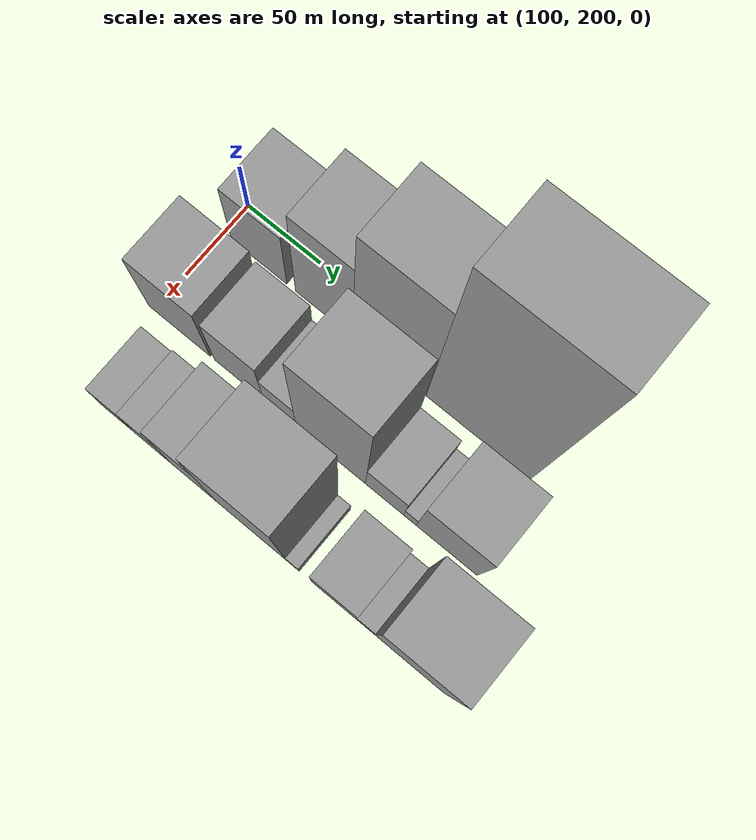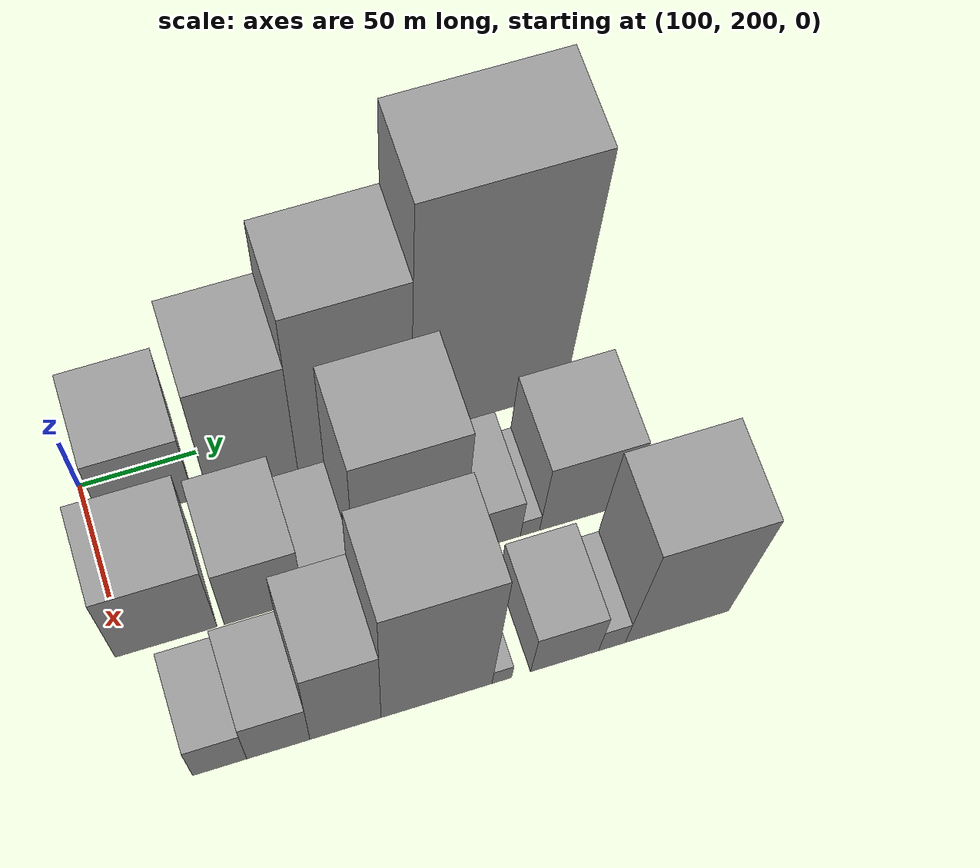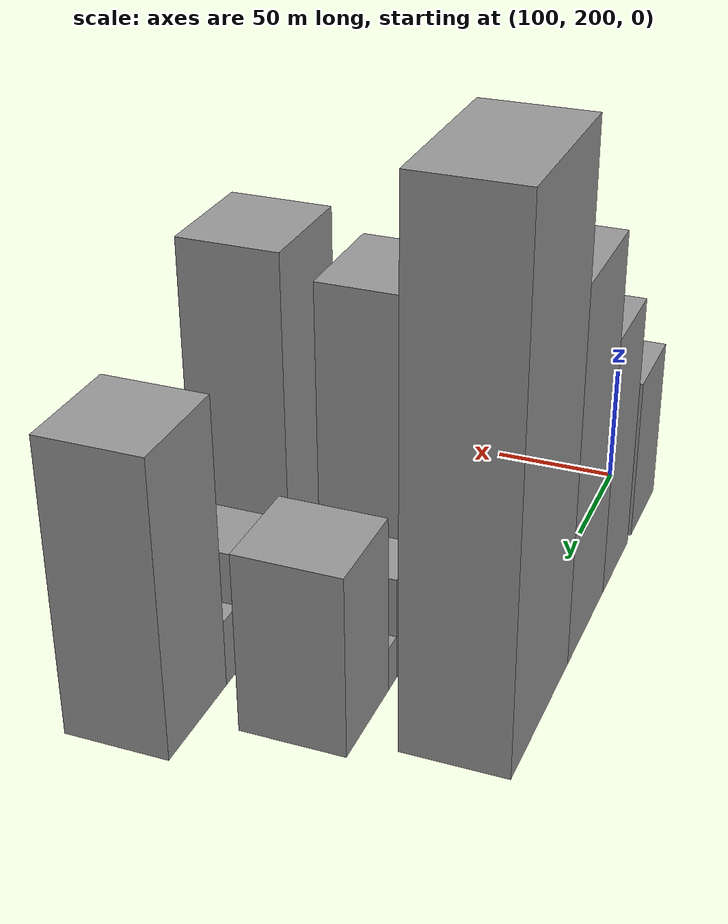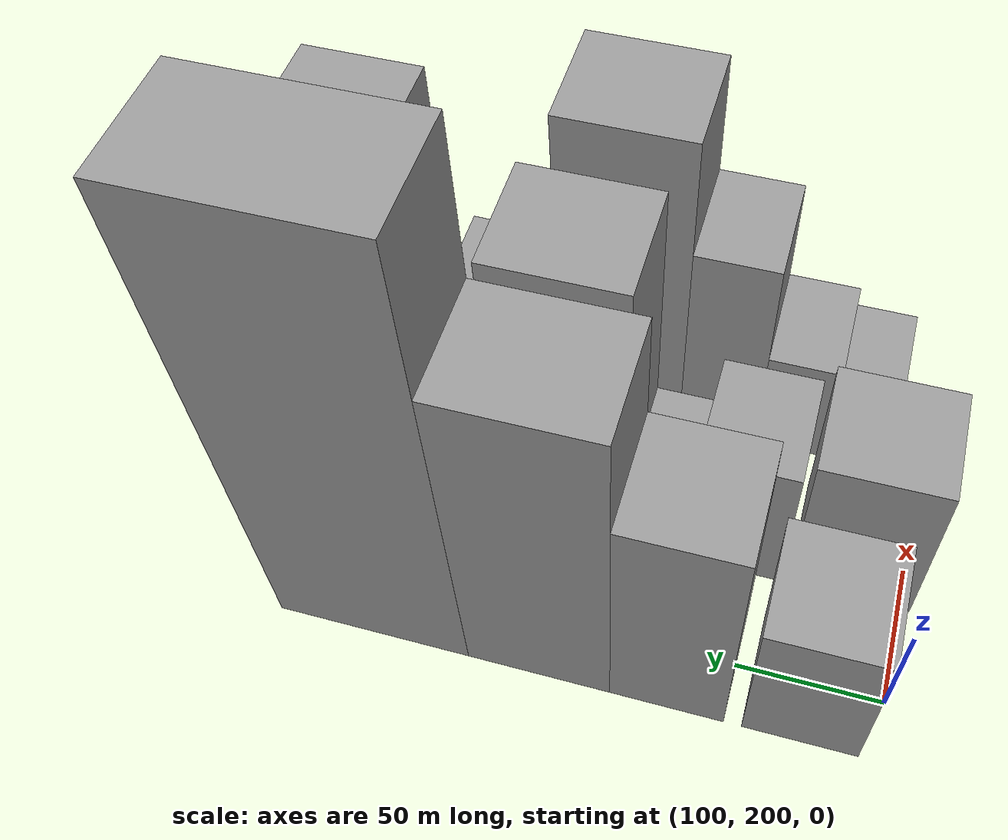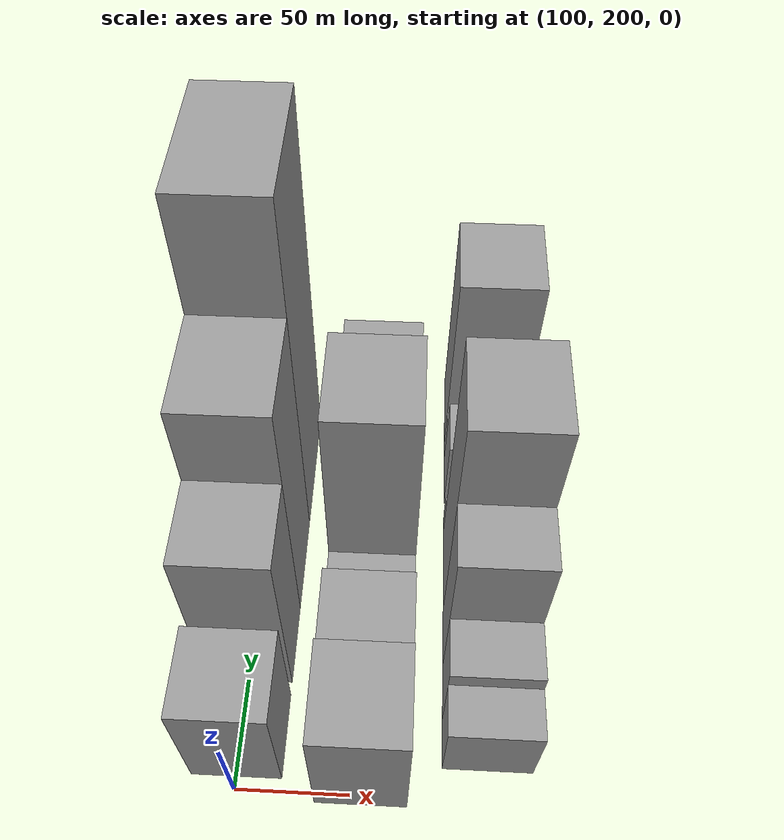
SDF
<sdf version="1.6">
 <world name="default">
  <model name="building_34">
   <static>1</static>
   <pose>100.0000 224.7273 0 0.000000 0.000000 0.000000</pose>
   <link name="link">
    <pose>0 0 34.50 0 0 0</pose>
    <collision name="collision"><geometry><box><size>40.0000 38.2369 69.0000</size></box></geometry></collision>
    <visual name="visual">
     <cast_shadows>0</cast_shadows>
     <geometry><box><size>40.0000 38.2369 69.0000</size></box></geometry>
     <material>
      <script>
       <uri>model://grey_wall/materials/scripts</uri>
       <uri>model://grey_wall/materials/textures</uri>
       <name>vrc/grey_wall</name>
      </script>
     </material>
    </visual>
   </link>
  </model>
  <model name="building_35">
   <static>1</static>
   <pose>100.0000 269.0364 0 0.000000 0.000000 0.000000</pose>
   <link name="link">
    <pose>0 0 54.00 0 0 0</pose>
    <collision name="collision"><geometry><box><size>40.0000 38.3813 108.0000</size></box></geometry></collision>
    <visual name="visual">
     <cast_shadows>0</cast_shadows>
     <geometry><box><size>40.0000 38.3813 108.0000</size></box></geometry>
     <material>
      <script>
       <uri>model://grey_wall/materials/scripts</uri>
       <uri>model://grey_wall/materials/textures</uri>
       <name>vrc/grey_wall</name>
      </script>
     </material>
    </visual>
   </link>
  </model>
  <model name="building_36">
   <static>1</static>
   <pose>100.0000 312.8432 0 0.000000 0.000000 0.000000</pose>
   <link name="link">
    <pose>0 0 75.00 0 0 0</pose>
    <collision name="collision"><geometry><box><size>40.0000 49.2324 150.0000</size></box></geometry></collision>
    <visual name="visual">
     <cast_shadows>0</cast_shadows>
     <geometry><box><size>40.0000 49.2324 150.0000</size></box></geometry>
     <material>
      <script>
       <uri>model://grey_wall/materials/scripts</uri>
       <uri>model://grey_wall/materials/textures</uri>
       <name>vrc/grey_wall</name>
      </script>
     </material>
    </visual>
   </link>
  </model>
  <model name="building_37">
   <static>1</static>
   <pose>100.0000 371.3804 0 0.000000 0.000000 0.000000</pose>
   <link name="link">
    <pose>0 0 103.50 0 0 0</pose>
    <collision name="collision"><geometry><box><size>40.0000 67.8420 207.0000</size></box></geometry></collision>
    <visual name="visual">
     <cast_shadows>0</cast_shadows>
     <geometry><box><size>40.0000 67.8420 207.0000</size></box></geometry>
     <material>
      <script>
       <uri>model://grey_wall/materials/scripts</uri>
       <uri>model://grey_wall/materials/textures</uri>
       <name>vrc/grey_wall</name>
      </script>
     </material>
    </visual>
   </link>
  </model>
  <model name="building_83">
   <static>1</static>
   <pose>155.0000 217.3656 0 0.000000 0.000000 0.000000</pose>
   <link name="link">
    <pose>0 0 37.50 0 0 0</pose>
    <collision name="collision"><geometry><box><size>40.0000 42.2635 75.0000</size></box></geometry></collision>
    <visual name="visual">
     <cast_shadows>0</cast_shadows>
     <geometry><box><size>40.0000 42.2635 75.0000</size></box></geometry>
     <material>
      <script>
       <uri>model://grey_wall/materials/scripts</uri>
       <uri>model://grey_wall/materials/textures</uri>
       <name>vrc/grey_wall</name>
      </script>
     </material>
    </visual>
   </link>
  </model>
  <model name="building_84">
   <static>1</static>
   <pose>155.0000 258.1300 0 0.000000 0.000000 0.000000</pose>
   <link name="link">
    <pose>0 0 33.00 0 0 0</pose>
    <collision name="collision"><geometry><box><size>40.0000 33.2653 66.0000</size></box></geometry></collision>
    <visual name="visual">
     <cast_shadows>0</cast_shadows>
     <geometry><box><size>40.0000 33.2653 66.0000</size></box></geometry>
     <material>
      <script>
       <uri>model://grey_wall/materials/scripts</uri>
       <uri>model://grey_wall/materials/textures</uri>
       <name>vrc/grey_wall</name>
      </script>
     </material>
    </visual>
   </link>
  </model>
  <model name="building_85">
   <static>1</static>
   <pose>155.0000 285.7227 0 0.000000 0.000000 0.000000</pose>
   <link name="link">
    <pose>0 0 21.00 0 0 0</pose>
    <collision name="collision"><geometry><box><size>40.0000 21.9200 42.0000</size></box></geometry></collision>
    <visual name="visual">
     <cast_shadows>0</cast_shadows>
     <geometry><box><size>40.0000 21.9200 42.0000</size></box></geometry>
     <material>
      <script>
       <uri>model://grey_wall/materials/scripts</uri>
       <uri>model://grey_wall/materials/textures</uri>
       <name>vrc/grey_wall</name>
      </script>
     </material>
    </visual>
   </link>
  </model>
  <model name="building_86">
   <static>1</static>
   <pose>155.0000 319.4944 0 0.000000 0.000000 0.000000</pose>
   <link name="link">
    <pose>0 0 69.00 0 0 0</pose>
    <collision name="collision"><geometry><box><size>40.0000 45.6235 138.0000</size></box></geometry></collision>
    <visual name="visual">
     <cast_shadows>0</cast_shadows>
     <geometry><box><size>40.0000 45.6235 138.0000</size></box></geometry>
     <material>
      <script>
       <uri>model://grey_wall/materials/scripts</uri>
       <uri>model://grey_wall/materials/textures</uri>
       <name>vrc/grey_wall</name>
      </script>
     </material>
    </visual>
   </link>
  </model>
  <model name="building_87">
   <static>1</static>
   <pose>155.0000 354.7733 0 0.000000 0.000000 0.000000</pose>
   <link name="link">
    <pose>0 0 21.00 0 0 0</pose>
    <collision name="collision"><geometry><box><size>40.0000 24.9342 42.0000</size></box></geometry></collision>
    <visual name="visual">
     <cast_shadows>0</cast_shadows>
     <geometry><box><size>40.0000 24.9342 42.0000</size></box></geometry>
     <material>
      <script>
       <uri>model://grey_wall/materials/scripts</uri>
       <uri>model://grey_wall/materials/textures</uri>
       <name>vrc/grey_wall</name>
      </script>
     </material>
    </visual>
   </link>
  </model>
  <model name="building_88">
   <static>1</static>
   <pose>155.0000 371.3429 0 0.000000 0.000000 0.000000</pose>
   <link name="link">
    <pose>0 0 9.00 0 0 0</pose>
    <collision name="collision"><geometry><box><size>40.0000 8.2049 18.0000</size></box></geometry></collision>
    <visual name="visual">
     <cast_shadows>0</cast_shadows>
     <geometry><box><size>40.0000 8.2049 18.0000</size></box></geometry>
     <material>
      <script>
       <uri>model://grey_wall/materials/scripts</uri>
       <uri>model://grey_wall/materials/textures</uri>
       <name>vrc/grey_wall</name>
      </script>
     </material>
    </visual>
   </link>
  </model>
  <model name="building_89">
   <static>1</static>
   <pose>155.0000 394.9471 0 0.000000 0.000000 0.000000</pose>
   <link name="link">
    <pose>0 0 36.00 0 0 0</pose>
    <collision name="collision"><geometry><box><size>40.0000 39.0036 72.0000</size></box></geometry></collision>
    <visual name="visual">
     <cast_shadows>0</cast_shadows>
     <geometry><box><size>40.0000 39.0036 72.0000</size></box></geometry>
     <material>
      <script>
       <uri>model://grey_wall/materials/scripts</uri>
       <uri>model://grey_wall/materials/textures</uri>
       <name>vrc/grey_wall</name>
      </script>
     </material>
    </visual>
   </link>
  </model>
  <model name="building_137">
   <static>1</static>
   <pose>210.0000 224.4299 0 0.000000 0.000000 0.000000</pose>
   <link name="link">
    <pose>0 0 21.00 0 0 0</pose>
    <collision name="collision"><geometry><box><size>40.0000 21.9990 42.0000</size></box></geometry></collision>
    <visual name="visual">
     <cast_shadows>0</cast_shadows>
     <geometry><box><size>40.0000 21.9990 42.0000</size></box></geometry>
     <material>
      <script>
       <uri>model://grey_wall/materials/scripts</uri>
       <uri>model://grey_wall/materials/textures</uri>
       <name>vrc/grey_wall</name>
      </script>
     </material>
    </visual>
   </link>
  </model>
  <model name="building_138">
   <static>1</static>
   <pose>210.0000 248.3579 0 0.000000 0.000000 0.000000</pose>
   <link name="link">
    <pose>0 0 25.50 0 0 0</pose>
    <collision name="collision"><geometry><box><size>40.0000 25.8571 51.0000</size></box></geometry></collision>
    <visual name="visual">
     <cast_shadows>0</cast_shadows>
     <geometry><box><size>40.0000 25.8571 51.0000</size></box></geometry>
     <material>
      <script>
       <uri>model://grey_wall/materials/scripts</uri>
       <uri>model://grey_wall/materials/textures</uri>
       <name>vrc/grey_wall</name>
      </script>
     </material>
    </visual>
   </link>
  </model>
  <model name="building_139">
   <static>1</static>
   <pose>210.0000 275.9244 0 0.000000 0.000000 0.000000</pose>
   <link name="link">
    <pose>0 0 48.00 0 0 0</pose>
    <collision name="collision"><geometry><box><size>40.0000 29.2758 96.0000</size></box></geometry></collision>
    <visual name="visual">
     <cast_shadows>0</cast_shadows>
     <geometry><box><size>40.0000 29.2758 96.0000</size></box></geometry>
     <material>
      <script>
       <uri>model://grey_wall/materials/scripts</uri>
       <uri>model://grey_wall/materials/textures</uri>
       <name>vrc/grey_wall</name>
      </script>
     </material>
    </visual>
   </link>
  </model>
  <model name="building_140">
   <static>1</static>
   <pose>210.0000 313.6726 0 0.000000 0.000000 0.000000</pose>
   <link name="link">
    <pose>0 0 72.00 0 0 0</pose>
    <collision name="collision"><geometry><box><size>40.0000 46.2206 144.0000</size></box></geometry></collision>
    <visual name="visual">
     <cast_shadows>0</cast_shadows>
     <geometry><box><size>40.0000 46.2206 144.0000</size></box></geometry>
     <material>
      <script>
       <uri>model://grey_wall/materials/scripts</uri>
       <uri>model://grey_wall/materials/textures</uri>
       <name>vrc/grey_wall</name>
      </script>
     </material>
    </visual>
   </link>
  </model>
  <model name="building_141">
   <static>1</static>
   <pose>210.0000 340.8838 0 0.000000 0.000000 0.000000</pose>
   <link name="link">
    <pose>0 0 9.00 0 0 0</pose>
    <collision name="collision"><geometry><box><size>40.0000 8.2020 18.0000</size></box></geometry></collision>
    <visual name="visual">
     <cast_shadows>0</cast_shadows>
     <geometry><box><size>40.0000 8.2020 18.0000</size></box></geometry>
     <material>
      <script>
       <uri>model://grey_wall/materials/scripts</uri>
       <uri>model://grey_wall/materials/textures</uri>
       <name>vrc/grey_wall</name>
      </script>
     </material>
    </visual>
   </link>
  </model>
  <model name="building_142">
   <static>1</static>
   <pose>210.0000 367.3639 0 0.000000 0.000000 0.000000</pose>
   <link name="link">
    <pose>0 0 24.00 0 0 0</pose>
    <collision name="collision"><geometry><box><size>40.0000 28.7582 48.0000</size></box></geometry></collision>
    <visual name="visual">
     <cast_shadows>0</cast_shadows>
     <geometry><box><size>40.0000 28.7582 48.0000</size></box></geometry>
     <material>
      <script>
       <uri>model://grey_wall/materials/scripts</uri>
       <uri>model://grey_wall/materials/textures</uri>
       <name>vrc/grey_wall</name>
      </script>
     </material>
    </visual>
   </link>
  </model>
  <model name="building_143">
   <static>1</static>
   <pose>210.0000 387.4172 0 0.000000 0.000000 0.000000</pose>
   <link name="link">
    <pose>0 0 13.50 0 0 0</pose>
    <collision name="collision"><geometry><box><size>40.0000 11.3484 27.0000</size></box></geometry></collision>
    <visual name="visual">
     <cast_shadows>0</cast_shadows>
     <geometry><box><size>40.0000 11.3484 27.0000</size></box></geometry>
     <material>
      <script>
       <uri>model://grey_wall/materials/scripts</uri>
       <uri>model://grey_wall/materials/textures</uri>
       <name>vrc/grey_wall</name>
      </script>
     </material>
    </visual>
   </link>
  </model>
  <model name="building_144">
   <static>1</static>
   <pose>210.0000 415.2209 0 0.000000 0.000000 0.000000</pose>
   <link name="link">
    <pose>0 0 58.50 0 0 0</pose>
    <collision name="collision"><geometry><box><size>40.0000 44.2590 117.0000</size></box></geometry></collision>
    <visual name="visual">
     <cast_shadows>0</cast_shadows>
     <geometry><box><size>40.0000 44.2590 117.0000</size></box></geometry>
     <material>
      <script>
       <uri>model://grey_wall/materials/scripts</uri>
       <uri>model://grey_wall/materials/textures</uri>
       <name>vrc/grey_wall</name>
      </script>
     </material>
    </visual>
   </link>
  </model>
 </world>
</sdf>
